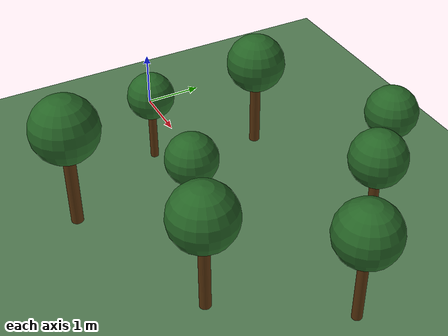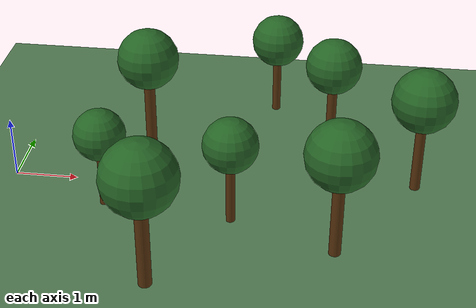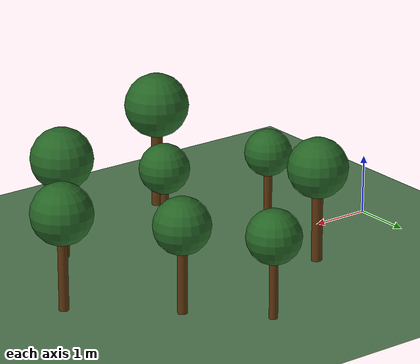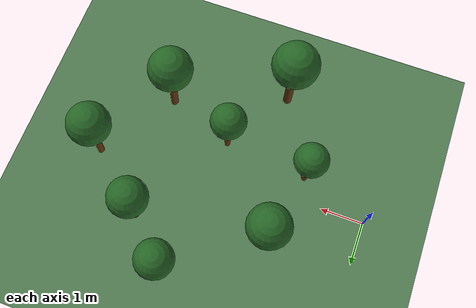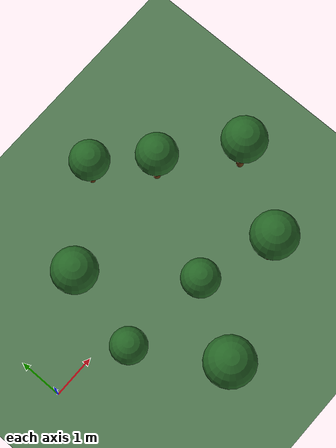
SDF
<?xml version="1.0" ?>
<sdf version="1.8">
  <world name="field">
    <physics name="1ms" type="ignored">
      <max_step_size>0.001</max_step_size>
      <real_time_factor>1.0</real_time_factor>
    </physics>

    <plugin filename="ignition-gazebo-physics-system"
            name="ignition::gazebo::systems::Physics"/>
    <plugin filename="ignition-gazebo-scene-broadcaster-system"
            name="ignition::gazebo::systems::SceneBroadcaster"/>
    <plugin filename="ignition-gazebo-user-commands-system"
            name="ignition::gazebo::systems::UserCommands"/>
    <plugin filename="ignition-gazebo-sensors-system"
            name="ignition::gazebo::systems::Sensors">
      <render_engine>ogre2</render_engine>
    </plugin>

    <light type="directional" name="sun">
      <cast_shadows>true</cast_shadows>
      <pose>0 0 10 0 0 0</pose>
      <diffuse>0.9 0.9 0.9 1</diffuse>
      <direction>-0.3 0.4 -0.9</direction>
    </light>

    <model name="ground_plane">
      <static>true</static>
      <link name="link">
        <collision name="collision">
          <geometry><plane><normal>0 0 1</normal><size>60 60</size></plane></geometry>
        </collision>
        <visual name="visual">
          <geometry><plane><normal>0 0 1</normal><size>60 60</size></plane></geometry>
          <material><ambient>0.3 0.45 0.3 1</ambient><diffuse>0.32 0.48 0.32 1</diffuse></material>
        </visual>
      </link>
    </model>

    <!-- Scattered trees (trunk = lidar-visible obstacle; canopy for looks),
         drivably spaced (>1.5 m apart). -->
    <!-- tree_0 --><model name="tree_0"><static>true</static><pose>2.0 1.2 0 0 0 0</pose><link name="l"><collision name="c"><pose>0 0 0.7 0 0 0</pose><geometry><cylinder><radius>0.09</radius><length>1.4</length></cylinder></geometry></collision><visual name="t"><pose>0 0 0.7 0 0 0</pose><geometry><cylinder><radius>0.09</radius><length>1.4</length></cylinder></geometry><material><ambient>0.35 0.2 0.05 1</ambient><diffuse>0.35 0.2 0.05 1</diffuse></material></visual><visual name="cn"><pose>0 0 1.6 0 0 0</pose><geometry><sphere><radius>0.5</radius></sphere></geometry><material><ambient>0.15 0.4 0.15 1</ambient><diffuse>0.15 0.4 0.15 1</diffuse></material></visual></link></model>
    <!-- tree_1 --><model name="tree_1"><static>true</static><pose>3.6 -0.8 0 0 0 0</pose><link name="l"><collision name="c"><pose>0 0 0.6 0 0 0</pose><geometry><cylinder><radius>0.07</radius><length>1.2</length></cylinder></geometry></collision><visual name="t"><pose>0 0 0.6 0 0 0</pose><geometry><cylinder><radius>0.07</radius><length>1.2</length></cylinder></geometry><material><ambient>0.35 0.2 0.05 1</ambient><diffuse>0.35 0.2 0.05 1</diffuse></material></visual><visual name="cn"><pose>0 0 1.35 0 0 0</pose><geometry><sphere><radius>0.42</radius></sphere></geometry><material><ambient>0.15 0.4 0.15 1</ambient><diffuse>0.15 0.4 0.15 1</diffuse></material></visual></link></model>
    <!-- tree_2 --><model name="tree_2"><static>true</static><pose>2.6 -2.4 0 0 0 0</pose><link name="l"><collision name="c"><pose>0 0 0.8 0 0 0</pose><geometry><cylinder><radius>0.10</radius><length>1.6</length></cylinder></geometry></collision><visual name="t"><pose>0 0 0.8 0 0 0</pose><geometry><cylinder><radius>0.10</radius><length>1.6</length></cylinder></geometry><material><ambient>0.35 0.2 0.05 1</ambient><diffuse>0.35 0.2 0.05 1</diffuse></material></visual><visual name="cn"><pose>0 0 1.8 0 0 0</pose><geometry><sphere><radius>0.55</radius></sphere></geometry><material><ambient>0.15 0.4 0.15 1</ambient><diffuse>0.15 0.4 0.15 1</diffuse></material></visual></link></model>
    <!-- tree_3 --><model name="tree_3"><static>true</static><pose>5.0 1.6 0 0 0 0</pose><link name="l"><collision name="c"><pose>0 0 0.65 0 0 0</pose><geometry><cylinder><radius>0.08</radius><length>1.3</length></cylinder></geometry></collision><visual name="t"><pose>0 0 0.65 0 0 0</pose><geometry><cylinder><radius>0.08</radius><length>1.3</length></cylinder></geometry><material><ambient>0.35 0.2 0.05 1</ambient><diffuse>0.35 0.2 0.05 1</diffuse></material></visual><visual name="cn"><pose>0 0 1.45 0 0 0</pose><geometry><sphere><radius>0.46</radius></sphere></geometry><material><ambient>0.15 0.4 0.15 1</ambient><diffuse>0.15 0.4 0.15 1</diffuse></material></visual></link></model>
    <!-- tree_4 --><model name="tree_4"><static>true</static><pose>5.2 -1.4 0 0 0 0</pose><link name="l"><collision name="c"><pose>0 0 0.75 0 0 0</pose><geometry><cylinder><radius>0.09</radius><length>1.5</length></cylinder></geometry></collision><visual name="t"><pose>0 0 0.75 0 0 0</pose><geometry><cylinder><radius>0.09</radius><length>1.5</length></cylinder></geometry><material><ambient>0.35 0.2 0.05 1</ambient><diffuse>0.35 0.2 0.05 1</diffuse></material></visual><visual name="cn"><pose>0 0 1.7 0 0 0</pose><geometry><sphere><radius>0.52</radius></sphere></geometry><material><ambient>0.15 0.4 0.15 1</ambient><diffuse>0.15 0.4 0.15 1</diffuse></material></visual></link></model>
    <!-- tree_5 --><model name="tree_5"><static>true</static><pose>1.6 -0.6 0 0 0 0</pose><link name="l"><collision name="c"><pose>0 0 0.55 0 0 0</pose><geometry><cylinder><radius>0.07</radius><length>1.1</length></cylinder></geometry></collision><visual name="t"><pose>0 0 0.55 0 0 0</pose><geometry><cylinder><radius>0.07</radius><length>1.1</length></cylinder></geometry><material><ambient>0.35 0.2 0.05 1</ambient><diffuse>0.35 0.2 0.05 1</diffuse></material></visual><visual name="cn"><pose>0 0 1.25 0 0 0</pose><geometry><sphere><radius>0.4</radius></sphere></geometry><material><ambient>0.15 0.4 0.15 1</ambient><diffuse>0.15 0.4 0.15 1</diffuse></material></visual></link></model>
    <!-- tree_6 --><model name="tree_6"><static>true</static><pose>6.4 0.4 0 0 0 0</pose><link name="l"><collision name="c"><pose>0 0 0.7 0 0 0</pose><geometry><cylinder><radius>0.08</radius><length>1.4</length></cylinder></geometry></collision><visual name="t"><pose>0 0 0.7 0 0 0</pose><geometry><cylinder><radius>0.08</radius><length>1.4</length></cylinder></geometry><material><ambient>0.35 0.2 0.05 1</ambient><diffuse>0.35 0.2 0.05 1</diffuse></material></visual><visual name="cn"><pose>0 0 1.6 0 0 0</pose><geometry><sphere><radius>0.5</radius></sphere></geometry><material><ambient>0.15 0.4 0.15 1</ambient><diffuse>0.15 0.4 0.15 1</diffuse></material></visual></link></model>
    <!-- tree_7 --><model name="tree_7"><static>true</static><pose>4.0 2.6 0 0 0 0</pose><link name="l"><collision name="c"><pose>0 0 0.6 0 0 0</pose><geometry><cylinder><radius>0.07</radius><length>1.2</length></cylinder></geometry></collision><visual name="t"><pose>0 0 0.6 0 0 0</pose><geometry><cylinder><radius>0.07</radius><length>1.2</length></cylinder></geometry><material><ambient>0.35 0.2 0.05 1</ambient><diffuse>0.35 0.2 0.05 1</diffuse></material></visual><visual name="cn"><pose>0 0 1.35 0 0 0</pose><geometry><sphere><radius>0.44</radius></sphere></geometry><material><ambient>0.15 0.4 0.15 1</ambient><diffuse>0.15 0.4 0.15 1</diffuse></material></visual></link></model>
  </world>
</sdf>
